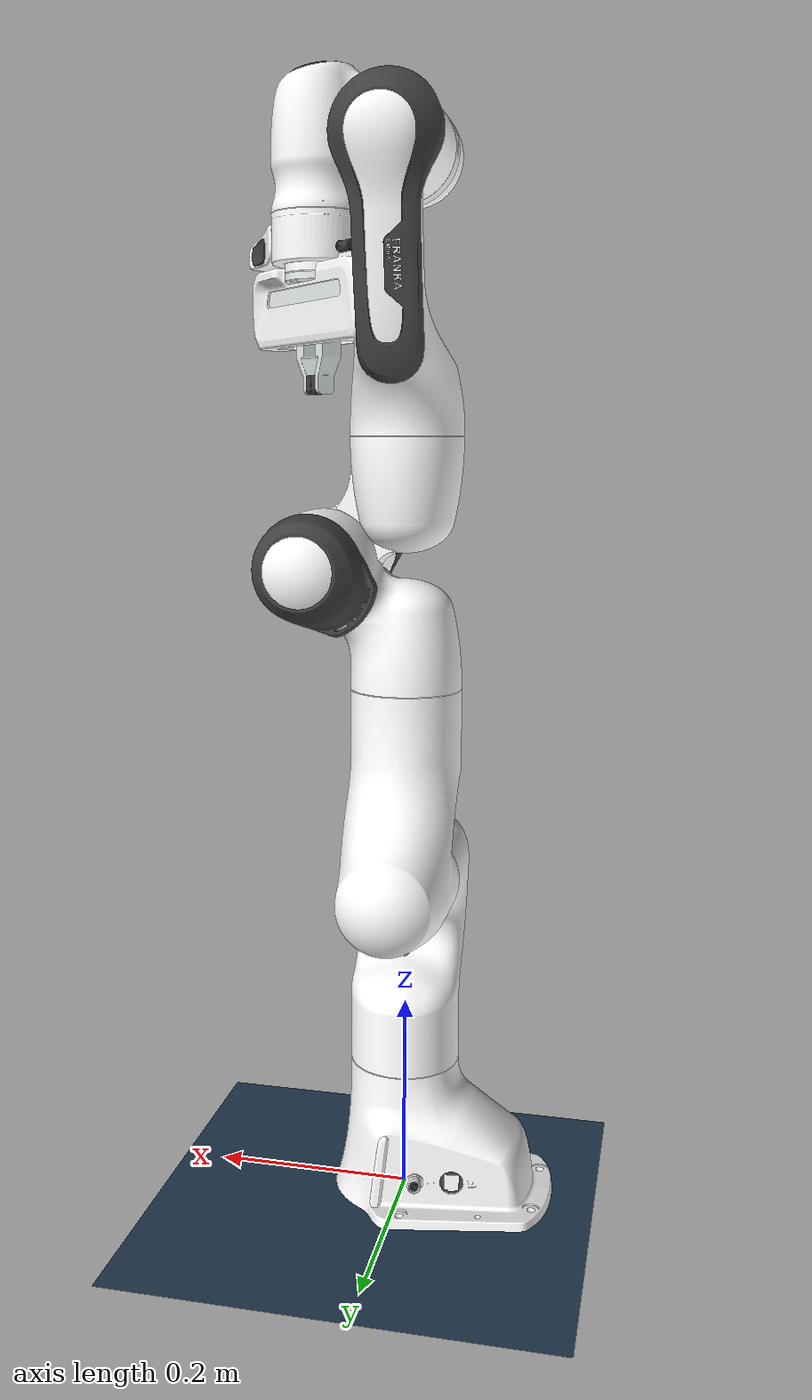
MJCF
<mujoco model="panda scene">

  <include file="panda.xml" />

  <statistic center="0.3 0 0.4" extent="1" />

  <visual>
    <headlight diffuse="0.6 0.6 0.6" ambient="0.3 0.3 0.3" specular="0 0 0" />
    <rgba haze="0.15 0.25 0.35 1" />
    <global azimuth="120" elevation="-20" />
  </visual>

  <asset>
    <texture type="skybox" builtin="gradient" rgb1="0.3 0.5 0.7" rgb2="0 0 0" width="512"
      height="3072" />
    <texture type="2d" name="groundplane" builtin="checker" mark="edge" rgb1="0.2 0.3 0.4"
      rgb2="0.1 0.2 0.3"
      markrgb="0.8 0.8 0.8" width="300" height="300" />
    <material name="groundplane" texture="groundplane" texuniform="true" texrepeat="5 5"
      reflectance="0.2" />
  </asset>

  <worldbody>
    <!-- Arena -->
    <light pos="0 0 1.5" dir="0 0 -1" directional="true" />
    <geom name="floor" size="0 0 0.05" type="plane" material="groundplane" />
  </worldbody>

</mujoco>

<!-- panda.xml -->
<mujoco model="panda">
  <compiler angle="radian" meshdir="assets" autolimits="true" />

  <option integrator="Euler" timestep="0.01" />

  <visual>
    <global offwidth="2048" offheight="2048" />
  </visual>

  <custom>
    <!-- brax custom params -->
    <numeric data="3000" name="constraint_stiffness" />
    <numeric data="2000" name="constraint_limit_stiffness" />
    <numeric data="10" name="constraint_ang_damping" />
    <numeric data="50" name="constraint_vel_damping" />
    <numeric data="0" name="ang_damping" />
    <numeric data="1" name="spring_mass_scale" />
    <numeric data="1" name="spring_inertia_scale" />
    <numeric data="10" name="solver_maxls" />
  </custom>

  <default>
    <default class="panda">
      <material specular="0.5" shininess="0.25" />
      <joint armature="0.1" damping="1" axis="0 0 1" range="-2.8973 2.8973" />
      <general dyntype="none" biastype="affine" ctrlrange="-2.8973 2.8973" forcerange="-87 87" />
      <default class="finger">
        <joint axis="0 1 0" type="slide" range="0 0.04" />
      </default>

      <default class="visual">
        <geom type="mesh" contype="0" conaffinity="0" group="2" />
      </default>
      <default class="collision">
        <geom type="mesh" group="3" />
        <default class="fingertip_pad_collision_1">
          <geom type="box" size="0.0085 0.004 0.0085" pos="0 0.0055 0.0445" />
        </default>
        <default class="fingertip_pad_collision_2">
          <geom type="box" size="0.003 0.002 0.003" pos="0.0055 0.002 0.05" />
        </default>
        <default class="fingertip_pad_collision_3">
          <geom type="box" size="0.003 0.002 0.003" pos="-0.0055 0.002 0.05" />
        </default>
        <default class="fingertip_pad_collision_4">
          <geom type="box" size="0.003 0.002 0.0035" pos="0.0055 0.002 0.0395" />
        </default>
        <default class="fingertip_pad_collision_5">
          <geom type="box" size="0.003 0.002 0.0035" pos="-0.0055 0.002 0.0395" />
        </default>
      </default>
    </default>
  </default>

  <asset>
    <material class="panda" name="white" rgba="1 1 1 1" />
    <material class="panda" name="off_white" rgba="0.901961 0.921569 0.929412 1" />
    <material class="panda" name="black" rgba="0.25 0.25 0.25 1" />
    <material class="panda" name="green" rgba="0 1 0 1" />
    <material class="panda" name="light_blue" rgba="0.039216 0.541176 0.780392 1" />

    <!-- Collision meshes -->
    <mesh name="link0_c" file="link0_16v.stl" />
    <mesh name="link1_c" file="link1_16v.stl" />
    <mesh name="link2_c" file="link2_16v.stl" />
    <mesh name="link3_c" file="link3_16v.stl" />
    <mesh name="link4_c" file="link4_16v.stl" />
    <mesh name="link5_c0" file="link5_collision_0_16v.stl" />
    <mesh name="link5_c1" file="link5_collision_1_16v.stl" />
    <mesh name="link5_c2" file="link5_collision_2_16v.stl" />
    <mesh name="link6_c" file="link6_16v.stl" />
    <mesh name="link7_c" file="link7_16v.stl" />
    <mesh name="hand_c" file="hand_16v.stl" />

    <!-- Simple visual meshes -->
    <mesh name="link0_simple" file="link0_simple.stl" />

    <!-- Visual meshes -->
    <mesh file="link0_0.obj" />
    <mesh file="link0_1.obj" />
    <mesh file="link0_2.obj" />
    <mesh file="link0_3.obj" />
    <mesh file="link0_4.obj" />
    <mesh file="link0_5.obj" />
    <mesh file="link0_7.obj" />
    <mesh file="link0_8.obj" />
    <mesh file="link0_9.obj" />
    <mesh file="link0_10.obj" />
    <mesh file="link0_11.obj" />
    <mesh file="link1.obj" />
    <mesh file="link2.obj" />
    <mesh file="link3_0.obj" />
    <mesh file="link3_1.obj" />
    <mesh file="link3_2.obj" />
    <mesh file="link3_3.obj" />
    <mesh file="link4_0.obj" />
    <mesh file="link4_1.obj" />
    <mesh file="link4_2.obj" />
    <mesh file="link4_3.obj" />
    <mesh file="link5_0.obj" />
    <mesh file="link5_1.obj" />
    <mesh file="link5_2.obj" />
    <mesh file="link6_0.obj" />
    <mesh file="link6_1.obj" />
    <mesh file="link6_2.obj" />
    <mesh file="link6_3.obj" />
    <mesh file="link6_4.obj" />
    <mesh file="link6_5.obj" />
    <mesh file="link6_6.obj" />
    <mesh file="link6_7.obj" />
    <mesh file="link6_8.obj" />
    <mesh file="link6_9.obj" />
    <mesh file="link6_10.obj" />
    <mesh file="link6_11.obj" />
    <mesh file="link6_12.obj" />
    <mesh file="link6_13.obj" />
    <mesh file="link6_14.obj" />
    <mesh file="link6_15.obj" />
    <mesh file="link6_16.obj" />
    <mesh file="link7_0.obj" />
    <mesh file="link7_1.obj" />
    <mesh file="link7_2.obj" />
    <mesh file="link7_3.obj" />
    <mesh file="link7_4.obj" />
    <mesh file="link7_5.obj" />
    <mesh file="link7_6.obj" />
    <mesh file="link7_7.obj" />
    <mesh file="hand_0.obj" />
    <mesh file="hand_1.obj" />
    <mesh file="hand_2.obj" />
    <mesh file="hand_3.obj" />
    <mesh file="hand_4.obj" />
    <mesh file="finger_0.obj" />
    <mesh file="finger_1.obj" />
  </asset>

  <worldbody>
    <light name="top" pos="0 0 2" mode="trackcom" />
    <site name="reference" pos="0 0 .25" />
    <body name="link0" childclass="panda">
      <geom mesh="link0_0" material="off_white" class="visual" />
      <geom mesh="link0_1" material="black" class="visual" />
      <geom mesh="link0_2" material="off_white" class="visual" />
      <geom mesh="link0_3" material="black" class="visual" />
      <geom mesh="link0_4" material="off_white" class="visual" />
      <geom mesh="link0_5" material="black" class="visual" />
      <geom mesh="link0_7" material="white" class="visual" />
      <geom mesh="link0_8" material="white" class="visual" />
      <geom mesh="link0_9" material="black" class="visual" />
      <geom mesh="link0_10" material="off_white" class="visual" />
      <geom mesh="link0_11" material="white" class="visual" />
      <body name="link1" pos="0 0 0.333">
        <inertial mass="4.970684" pos="0.003875 0.002081 -0.04762"
          fullinertia="0.70337 0.70661 0.0091170 -0.00013900 0.0067720 0.019169" />
        <joint name="joint1" type="hinge" pos="0 0 0" axis="0 0 1" damping="10.0" />
        <geom material="white" mesh="link1" class="visual" />
        <body name="link2" quat="1 -1 0 0">
          <inertial mass="0.646926" pos="-0.003141 -0.02872 0.003495"
            fullinertia="0.0079620 2.8110e-2 2.5995e-2 -3.925e-3 1.0254e-2 7.04e-4" />
          <joint name="joint2" range="-1.7628 1.7628" type="hinge" pos="0 0 0" axis="0 0 1"
            damping="10.0" />
          <geom material="white" mesh="link2" class="visual" />
          <body name="link3" pos="0 -0.316 0" quat="1 1 0 0">
            <joint name="joint3" type="hinge" pos="0 0 0" axis="0 0 1" damping="7.0" />
            <inertial mass="3.228604" pos="2.7518e-2 3.9252e-2 -6.6502e-2"
              fullinertia="3.7242e-2 3.6155e-2 1.083e-2 -4.761e-3 -1.1396e-2 -1.2805e-2" />
            <geom mesh="link3_0" material="white" class="visual" />
            <geom mesh="link3_1" material="white" class="visual" />
            <geom mesh="link3_2" material="white" class="visual" />
            <geom mesh="link3_3" material="black" class="visual" />
            <body name="link4" pos="0.0825 0 0" quat="1 1 0 0">
              <inertial mass="3.587895" pos="-5.317e-2 1.04419e-1 2.7454e-2"
                fullinertia="2.5853e-2 1.9552e-2 2.8323e-2 7.796e-3 -1.332e-3 8.641e-3" />
              <joint name="joint4" range="-3.0718 -0.0698" type="hinge" pos="0 0 0" axis="0 0 1"
                damping="5.0" />
              <geom mesh="link4_0" material="white" class="visual" />
              <geom mesh="link4_1" material="white" class="visual" />
              <geom mesh="link4_2" material="black" class="visual" />
              <geom mesh="link4_3" material="white" class="visual" />
              <body name="link5" pos="-0.0825 0.384 0" quat="1 -1 0 0">
                <inertial mass="1.225946" pos="-1.1953e-2 4.1065e-2 -3.8437e-2"
                  fullinertia="3.5549e-2 2.9474e-2 8.627e-3 -2.117e-3 -4.037e-3 2.29e-4" />
                <joint name="joint5" type="hinge" pos="0 0 0" axis="0 0 1" damping="3.0" />
                <geom mesh="link5_0" material="black" class="visual" />
                <geom mesh="link5_1" material="white" class="visual" />
                <geom mesh="link5_2" material="white" class="visual" />
                <body name="link6" quat="1 1 0 0">
                  <inertial mass="1.666555" pos="6.0149e-2 -1.4117e-2 -1.0517e-2"
                    fullinertia="1.964e-3 4.354e-3 5.433e-3 1.09e-4 -1.158e-3 3.41e-4" />
                  <joint name="joint6" range="-0.0175 3.7525" type="hinge" pos="0 0 0" axis="0 0 1"
                    damping="2.0" />
                  <geom mesh="link6_0" material="off_white" class="visual" />
                  <geom mesh="link6_1" material="white" class="visual" />
                  <geom mesh="link6_2" material="black" class="visual" />
                  <geom mesh="link6_3" material="white" class="visual" />
                  <geom mesh="link6_4" material="white" class="visual" />
                  <geom mesh="link6_5" material="white" class="visual" />
                  <geom mesh="link6_6" material="white" class="visual" />
                  <geom mesh="link6_7" material="light_blue" class="visual" />
                  <geom mesh="link6_8" material="light_blue" class="visual" />
                  <geom mesh="link6_9" material="black" class="visual" />
                  <geom mesh="link6_10" material="black" class="visual" />
                  <geom mesh="link6_11" material="white" class="visual" />
                  <geom mesh="link6_12" material="green" class="visual" />
                  <geom mesh="link6_13" material="white" class="visual" />
                  <geom mesh="link6_14" material="black" class="visual" />
                  <geom mesh="link6_15" material="black" class="visual" />
                  <geom mesh="link6_16" material="white" class="visual" />
                  <body name="link7" pos="0.088 0 0" quat="1 1 0 0">
                    <!-- This is the one -->
                    <joint name="joint7" type="hinge" pos="0 0 0" axis="0 0 1" damping="1.0" />
                    <geom mesh="link7_0" material="white" class="visual" />
                    <geom mesh="link7_1" material="black" class="visual" />
                    <geom mesh="link7_2" material="black" class="visual" />
                    <geom mesh="link7_3" material="black" class="visual" />
                    <geom mesh="link7_4" material="black" class="visual" />
                    <geom mesh="link7_5" material="black" class="visual" />
                    <geom mesh="link7_6" material="black" class="visual" />
                    <geom mesh="link7_7" material="white" class="visual" />
                    <body name="hand" pos="0 0 0.107" quat="0.9238795 0 0 -0.3826834">
                      <site name="hand" pos="0 -.05 0" />
                      <inertial mass="0.73" pos="-0.01 0 0.03" diaginertia="0.001 0.0025 0.0017" />
                      <geom mesh="hand_0" material="off_white" class="visual" />
                      <geom mesh="hand_1" material="black" class="visual" />
                      <geom mesh="hand_2" material="black" class="visual" />
                      <geom mesh="hand_3" material="white" class="visual" />
                      <geom mesh="hand_4" material="off_white" class="visual" />
                      <geom type="box" class="collision" size="0.019 0.1 0.04" pos="0 0 0.025" />
                      <body name="left_finger" pos="0 0 0.0584">
                        <inertial mass="0.015" pos="0 0 0" diaginertia="2.375e-6 2.375e-6 7.5e-7" />
                        <joint name="finger_joint1" class="finger" axis="0 1 0" type="slide"
                          damping="0.1" limited="true" range="0 0.04" />
                        <geom mesh="finger_0" material="off_white" class="visual" />
                        <geom mesh="finger_1" material="black" class="visual" />
                      </body>
                      <body name="right_finger" pos="0 0 0.0584" quat="0 0 0 1">
                        <inertial mass="0.015" pos="0 0 0" diaginertia="2.375e-6 2.375e-6 7.5e-7" />
                        <joint name="finger_joint2" class="finger" axis="0 1 0" range="-0.03 0"
                          damping="0.1" limited="true" type="slide" />
                        <geom mesh="finger_0" material="off_white" class="visual" />
                        <geom mesh="finger_1" material="black" class="visual" />
                      </body>
                    </body>
                  </body>
                </body>
              </body>
            </body>
          </body>
        </body>
      </body>
    </body>

    <camera name="fixed_cam1" pos="2.0 1.5 1.0" mode="fixed" euler="0.5 0 3.5" />
  </worldbody>

  <actuator>
    <position class="panda" name="actuator1" joint="joint1" kp="75" />
    <position class="panda" name="actuator2" joint="joint2" kp="75" ctrlrange="-1.7628 1.7628"
      gear="250" />
    <position class="panda" name="actuator3" joint="joint3" kp="50" gear="250" />
    <position class="panda" name="actuator4" joint="joint4" kp="50" ctrlrange="-3.0718 -0.0698"
      gear="250" />
    <position class="panda" name="actuator5" joint="joint5" kp="35" forcerange="-12 12" gear="250" />
    <position class="panda" name="actuator6" joint="joint6" kp="10" forcerange="-12 12"
      ctrlrange="-0.0175 3.7525" gear="250" />
    <position class="panda" name="actuator7" joint="joint7" kp="10" forcerange="-12 12" gear="250" />
  </actuator>

</mujoco>
